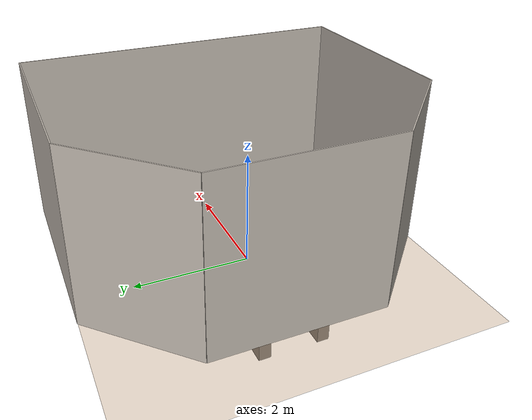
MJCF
<mujoco model="empty_arena">
<option density="1.2" />
  <asset>
    <texture builtin="gradient" height="256" rgb1=".9 .9 1." rgb2=".2 .3 .4" type="skybox" width="256" />
    <texture file="../textures/wood-tiles.png" type="2d" name="texplane" />
    <material name="floorplane" reflectance="0.01" shininess="0.0" specular="0.0" texrepeat="2 2" texture="texplane" texuniform="true" />

    <texture file="../textures/cream-plaster.png" type="2d" name="tex-cream-plaster" />
    <material name="walls_mat" reflectance="0.0" shininess="0.1" specular="0.1" texrepeat="3 3" texture="tex-cream-plaster" texuniform="true" />

  </asset>
  <worldbody>

    <geom condim="3" material="floorplane" name="floor" pos="0 0 0" size="3 3 .125" type="plane" />

    <geom pos="-1.25 2.25 1.5" quat="0.6532815 0.6532815 0.2705981 0.2705981" size="1.06 1.5 0.01" type="box" conaffinity="0" contype="0" group="1" name="wall_leftcorner_visual" material="walls_mat" />
    <geom pos="-1.25 -2.25 1.5" quat="0.6532815 0.6532815 -0.2705981 -0.2705981" size="1.06 1.5 0.01" type="box" conaffinity="0" contype="0" group="1" name="wall_rightcorner_visual" material="walls_mat" />
    <geom pos="1.25 3 1.5" quat="0.7071 0.7071 0 0" size="1.75 1.5 0.01" type="box" conaffinity="0" contype="0" group="1" name="wall_left_visual" material="walls_mat" />
    <geom pos="1.25 -3 1.5" quat="0.7071 -0.7071 0 0" size="1.75 1.5 0.01" type="box" conaffinity="0" contype="0" group="1" name="wall_right_visual" material="walls_mat" />
    <geom pos="-2 0 1.5" quat="0.5 0.5 0.5 0.5" size="1.5 1.5 0.01" type="box" conaffinity="0" contype="0" group="1" name="wall_rear_visual" material="walls_mat" />
    <geom pos="3 0 1.5" quat="0.5 0.5 -0.5 -0.5" size="3 1.5 0.01" type="box" conaffinity="0" contype="0" group="1" name="wall_front_visual" material="walls_mat" />
    <light diffuse=".8 .8 .8" dir="0 -.15 -1" directional="false" pos="1 1 4.0" specular="0.3 0.3 0.3" castshadow="false" />
    <light diffuse=".8 .8 .8" dir="0 -.15 -1" directional="false" pos="-3. -3. 4.0" specular="0.3 0.3 0.3" castshadow="false" />

    <body pos="-1.5 0 0.3">
      <geom pos="0 0 0" size="0.3 0.5 0.3" type="box" group="0" friction="0 0 0" />
    </body>
    <body pos="-1.5 -0.5 0.3">
      <geom pos="0 0 0" size="0.3 0.1 0.8" type="box" group="0" friction="0 0 0" />
    </body>
    <body pos="-1.5 0.5 0.3">
      <geom pos="0 0 0" size="0.3 0.1 0.8" type="box" group="0" friction="0 0 0" />
    </body>

    <camera mode="fixed" name="frontview" pos="1.4 0 1.45" quat="0.56 0.43 0.43 0.56" />

    <camera mode="fixed" name="birdview" pos="-0.2 0 3.0" quat="0.7071 0 0 0.7071" />

    <camera mode="fixed" name="agentview" pos="0.5 0 1.35" quat="0.653 0.271 0.271 0.653" />

    <camera mode="fixed" name="sideview" pos="-0.05651774593317116 2.2761224129427358 1.4879572214102434" quat="0.009905065491771751 0.006877963156909582 0.5912228352893879 0.806418094001364" />
  </worldbody>
</mujoco>
